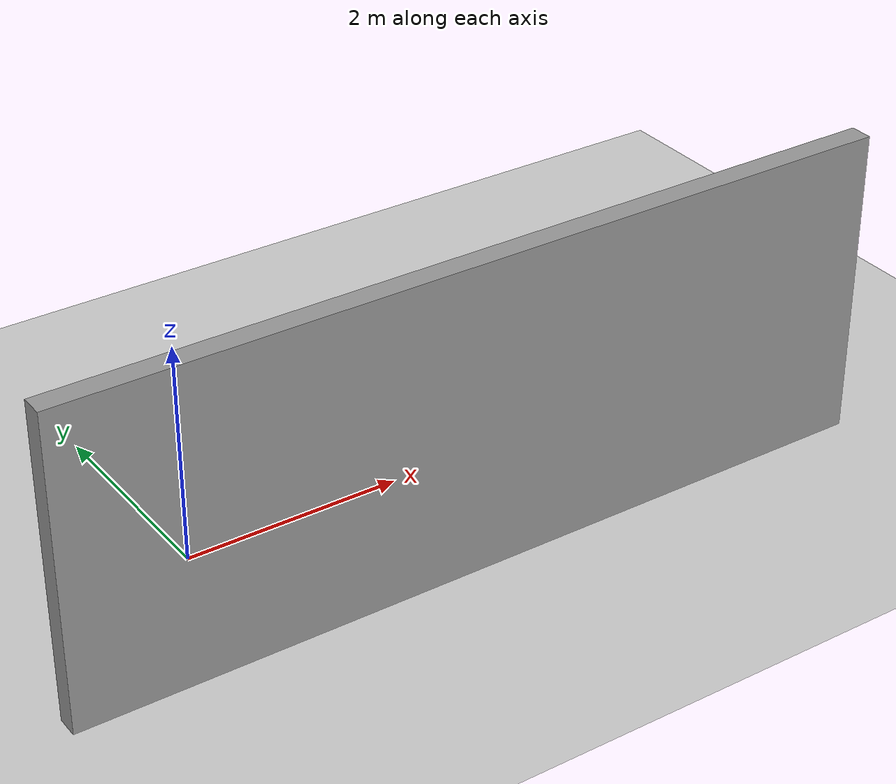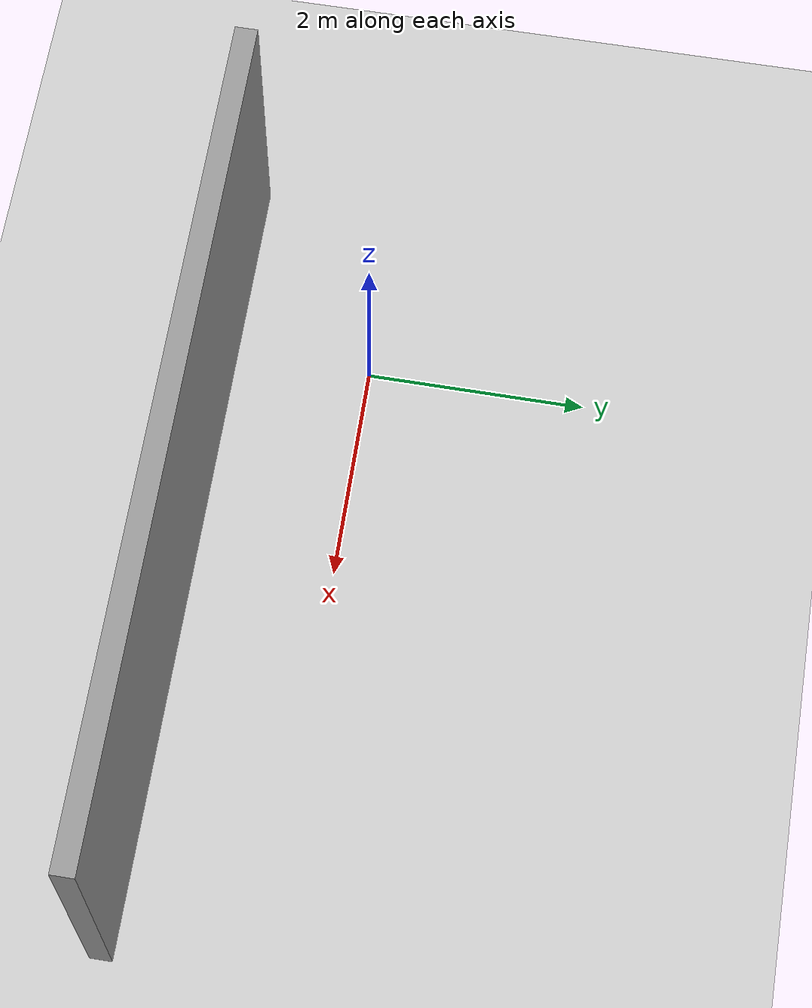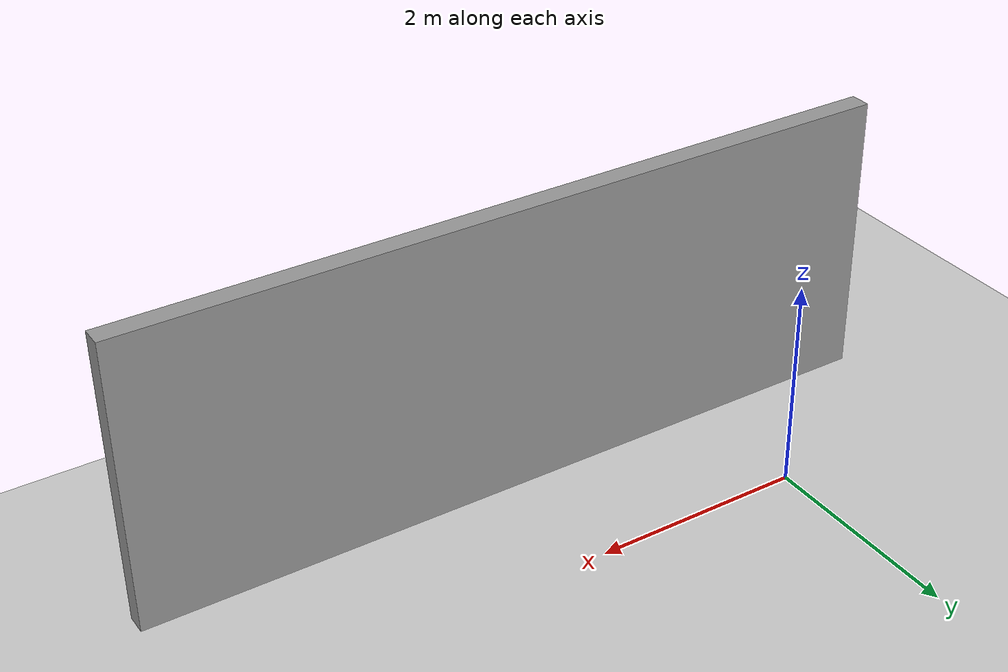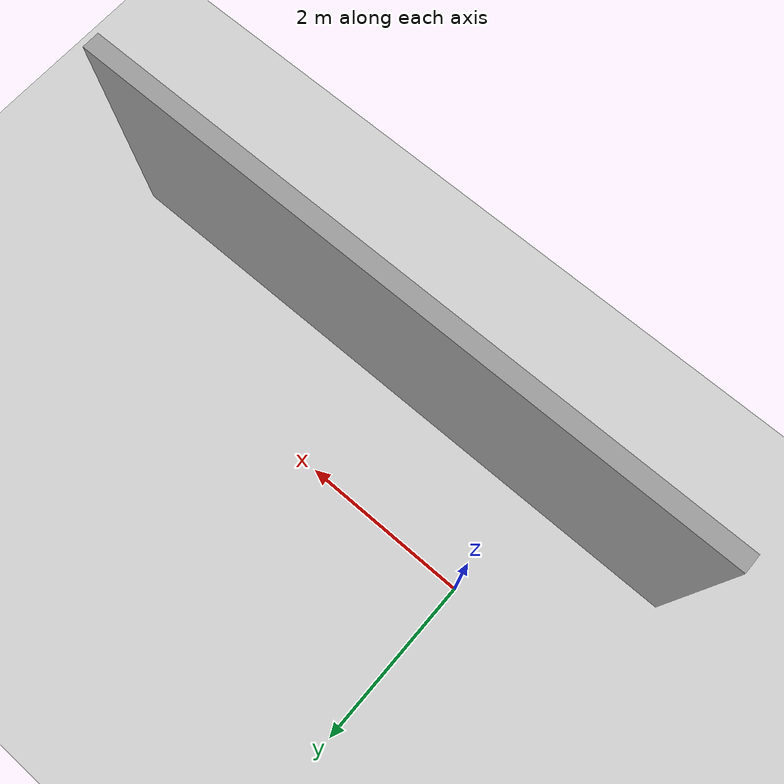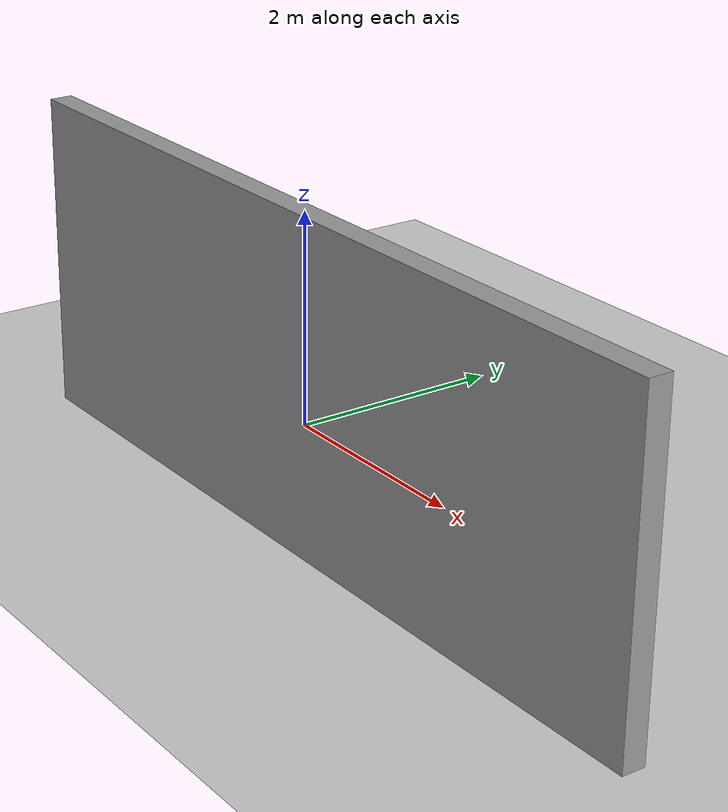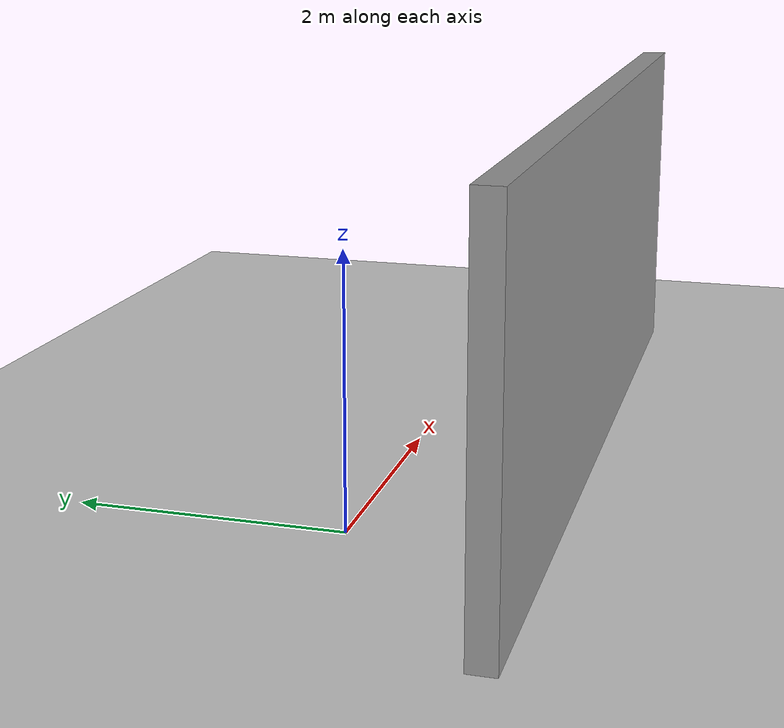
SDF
<sdf version="1.4">
  <world name="default">
    <scene>
      <ambient>.1 .1 .1 1</ambient>
      <shadows>false</shadows>
    </scene>
    <physics type='ode'>
      <max_step_size>0.001</max_step_size>
      <real_time_factor>1</real_time_factor>
      <real_time_update_rate>1000</real_time_update_rate>
      <gravity>0 0 -9.8</gravity>
    </physics>
    <!-- A ground plane -->
    <include>
      <uri>model://ground_plane</uri>
    </include>
    <!-- A global light source -->
    <include>
      <uri>model://sun</uri>
    </include>
    <model name='grey_wall'>
      <static>1</static>
      <link name='link'>
        <pose>0 0 1.4 0 -0 0</pose>
        <collision name='collision'>
          <geometry>
            <box>
              <size>7.5 0.2 2.8</size>
            </box>
          </geometry>
          <max_contacts>10</max_contacts>
          <surface>
            <bounce/>
            <friction>
              <ode/>
            </friction>
            <contact>
              <ode/>
            </contact>
          </surface>
        </collision>
        <visual name='visual'>
          <cast_shadows>0</cast_shadows>
          <geometry>
            <box>
              <size>7.5 0.2 2.8</size>
            </box>
          </geometry>
          <material>
            <script>
              <uri>model://grey_wall/materials/scripts</uri>
              <uri>model://grey_wall/materials/textures</uri>
              <name>vrc/grey_wall</name>
            </script>
          </material>
        </visual>
        <velocity_decay>
          <linear>0</linear>
          <angular>0</angular>
        </velocity_decay>
        <self_collide>0</self_collide>
        <kinematic>0</kinematic>
        <gravity>1</gravity>
      </link>
      <pose>2 -1.35 0 0 -0 0</pose>
    </model>
  </world>
</sdf>
